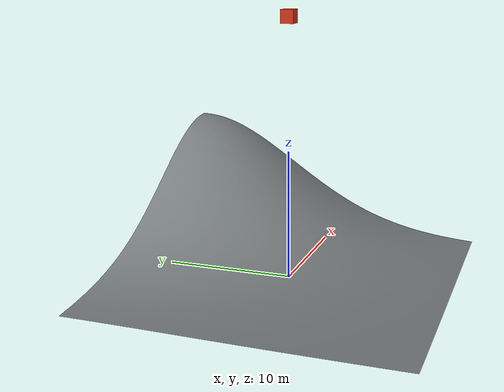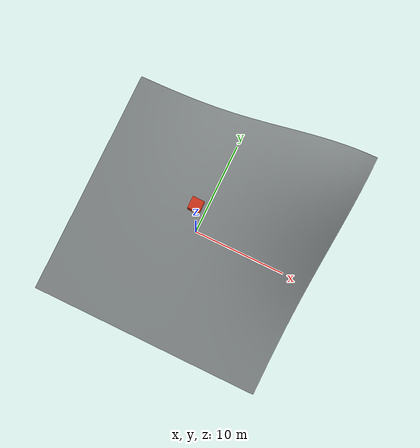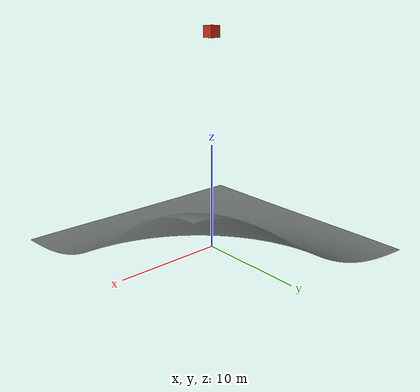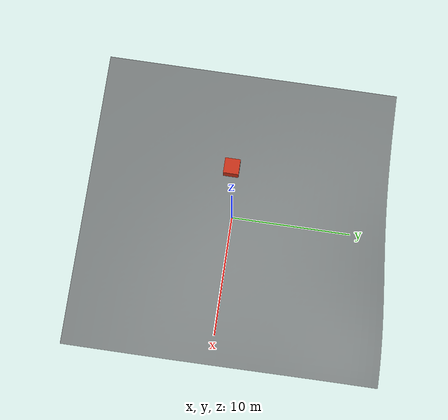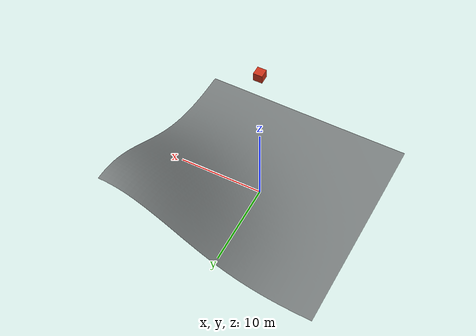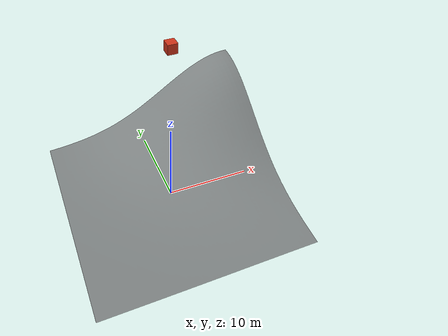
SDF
<?xml version="1.0"?>
<sdf version="1.10">
  <world name="dem_soil_check">
    <physics name="default_physics" type="ignored">
      <max_step_size>0.001</max_step_size>
      <real_time_factor>1.0</real_time_factor>
    </physics>

    <plugin filename="gz-sim-physics-system" name="gz::sim::systems::Physics"/>
    <plugin filename="gz-sim-user-commands-system" name="gz::sim::systems::UserCommands"/>
    <plugin filename="gz-sim-scene-broadcaster-system" name="gz::sim::systems::SceneBroadcaster"/>

    <light name="sun" type="directional">
      <cast_shadows>true</cast_shadows>
      <pose>0 0 30 0 0 0</pose>
      <diffuse>0.8 0.8 0.8 1</diffuse>
      <specular>0.2 0.2 0.2 1</specular>
      <direction>-0.5 0.1 -0.9</direction>
    </light>

    <include>
      <name>dem_level_rocks</name>
      <uri>model://dem_level_rocks</uri>
      <pose>-12.5 -12.5 0 0 0 0</pose>
    </include>

    <include>
      <name>falling_box</name>
      <uri>model://falling_box</uri>
      <pose>0 0 20 0 0 0</pose>
    </include>
  </world>
</sdf>

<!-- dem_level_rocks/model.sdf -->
<sdf version="1.10">
  <model name="dem_level_rocks">
    <static>true</static>
    <link name="terrain_link">
      <visual name="terrain_visual">
        <geometry>
          <mesh>
            <uri>model://dem_level_rocks/meshes/example_dem_100m_sw.dae</uri>
            <scale>0.5 0.5 1</scale>
          </mesh>
        </geometry>
        <material>
          <diffuse>0.48 0.5 0.5 1</diffuse>
          <pbr>
            <metal>
              <albedo_map>model://dem_level_rocks/materials/textures/dem_level_rocks.png</albedo_map>
            </metal>
          </pbr>
        </material>
      </visual>
      <collision name="terrain_collision">
        <geometry>
          <mesh>
            <uri>model://dem_level_rocks/meshes/example_dem_100m_sw.dae</uri>
            <scale>0.5 0.5 1</scale>
          </mesh>
        </geometry>
      </collision>
    </link>
  </model>
</sdf>

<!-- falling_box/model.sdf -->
<sdf version="1.10">
  <model name="falling_box">
    <static>false</static>
    <link name="box_link">
      <inertial>
        <mass>1.0</mass>
        <inertia>
          <ixx>0.1667</ixx>
          <iyy>0.1667</iyy>
          <izz>0.1667</izz>
        </inertia>
      </inertial>
      <visual name="box_visual">
        <geometry>
          <box>
            <size>1 1 1</size>
          </box>
        </geometry>
        <material>
          <diffuse>0.8 0.2 0.1 1</diffuse>
        </material>
      </visual>
      <collision name="box_collision">
        <geometry>
          <box>
            <size>1 1 1</size>
          </box>
        </geometry>
      </collision>
    </link>
  </model>
</sdf>
